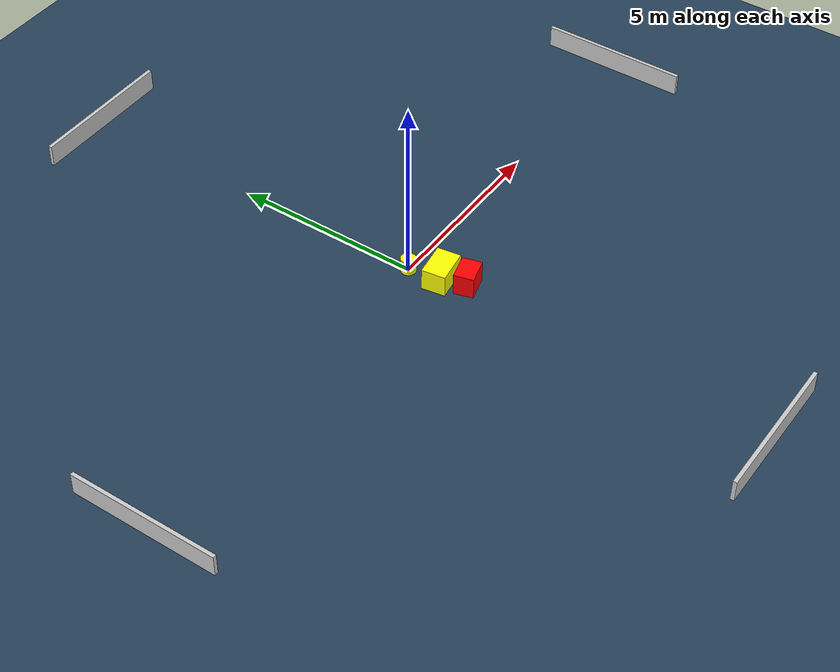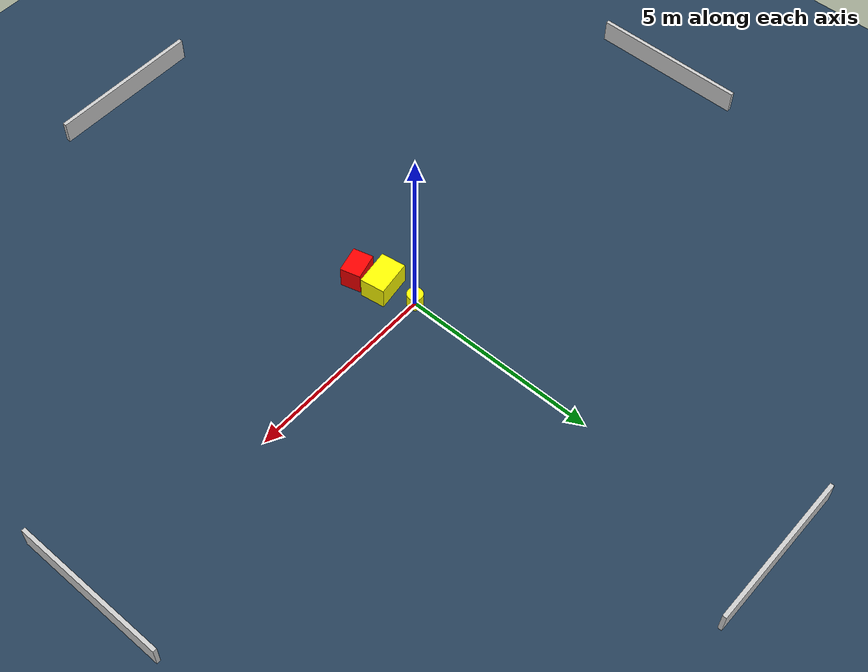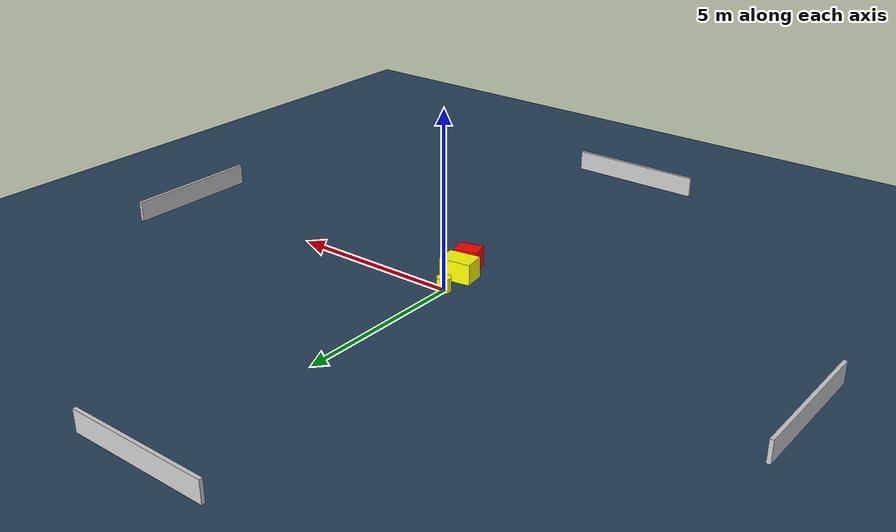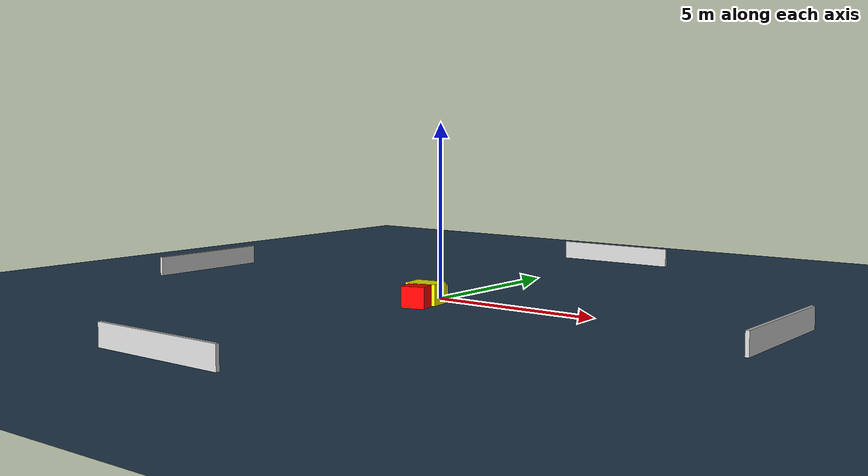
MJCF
<?xml version="1.0" ?>
<mujoco model="generated_environment">
  <option timestep="0.01" integrator="RK4" cone="elliptic"/>
  <default>
    <geom density="1"/>
  </default>
  <asset>
    <texture builtin="gradient" height="3072" name="skybox" rgb1="0.3 0.5 0.7" rgb2="0 0 0" type="skybox" width="512"/>
    <texture builtin="checker" height="300" name="groundplane" rgb1="0.2 0.3 0.4" rgb2="0.1 0.2 0.3" type="2d" width="300"/>
    <material name="groundplane" reflectance="0.2" texrepeat="5 5" texture="groundplane"/>
  </asset>
  <worldbody>
    <light dir="0 0 -1" directional="true" pos="0 0 1.5"/>
    <geom condim="3" friction="0.5 0.005 0.001" material="groundplane" name="floor" pos="0 0 0" size="0 0 0.05" type="plane"/>
    <body name="walls">
      <geom name="wall_1" condim="4" pos="-10.0 0.0 0.3" rgba="0.800000011920929 0.800000011920929 0.800000011920929 1.0" size="0.05 2.0 0.3" type="box"/>
      <geom name="wall_2" condim="4" pos="10.0 0.0 0.3" rgba="0.800000011920929 0.800000011920929 0.800000011920929 1.0" size="0.05 2.0 0.3" type="box"/>
      <geom name="wall_3" condim="4" pos="0.0 -10.0 0.3" rgba="0.800000011920929 0.800000011920929 0.800000011920929 1.0" size="2.0 0.05 0.3" type="box"/>
      <geom name="wall_4" condim="4" pos="0.0 10.0 0.3" rgba="0.800000011920929 0.800000011920929 0.800000011920929 1.0" size="2.0 0.05 0.3" type="box"/>
    </body>
    <body name="robot">
      <joint name="joint_x" type="slide" pos="0 0 0" axis="1 0 0"/>
      <joint name="joint_y" type="slide" pos="0 0 0" axis="0 1 0"/>
      <geom name="robot" type="cylinder" pos="0.0 0.0 0.2" size="0.2 0.2 0.0" mass="5.0" friction="1.0 0.005 0.0001" condim="4" rgba="1.0 1.0 0.0 1.0"/>
    </body>
    <body name="obstacle_1_movable">
      <geom name="obstacle_1_movable" condim="4" pos="0.14736801883090034 -0.8731974790311441 0.3" euler="0 0 8.485622234569341" friction="0.0 0.005 0.001" rgba="1.0 1.0 0.0 1.0" size="0.4571529376533473 0.31585107792126077 0.3" type="box" mass="0.1"/>
      <joint type="free"/>
    </body>
    <body name="obstacle_2_static">
      <geom name="obstacle_2_static" condim="4" pos="0.33829460300523934 -1.5262760388887622 0.3" euler="0 0 105.04024582079565" friction="0.0 0.005 0.001" rgba="1.0 0.0 0.0 1.0" size="0.2610970630830187 0.3402546885082267 0.3" type="box"/>
    </body>
  </worldbody>
  <actuator>
    <motor name="actuator_x" joint="joint_x" gear="1" ctrlrange="-1 1"/>
    <motor name="actuator_y" joint="joint_y" gear="1" ctrlrange="-1 1"/>
  </actuator>
</mujoco>
